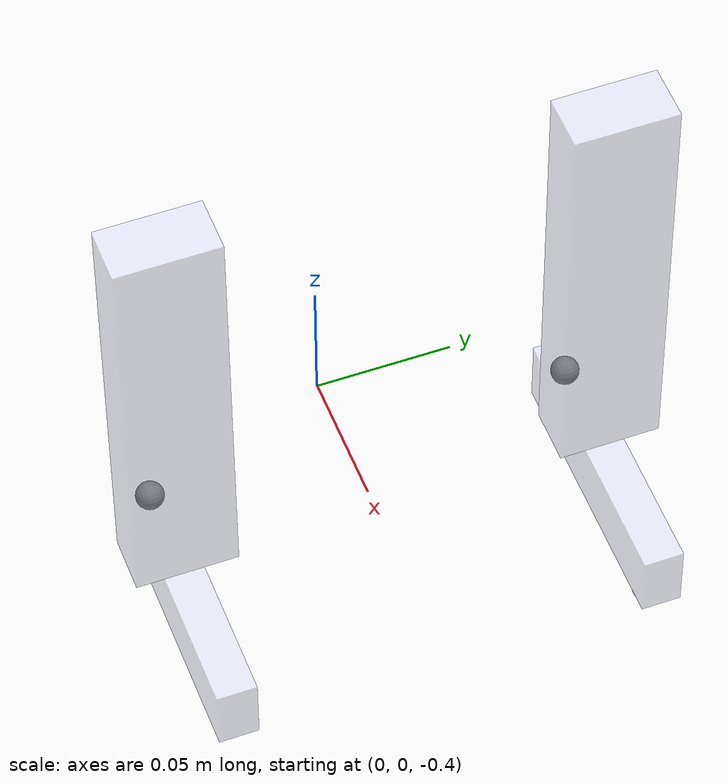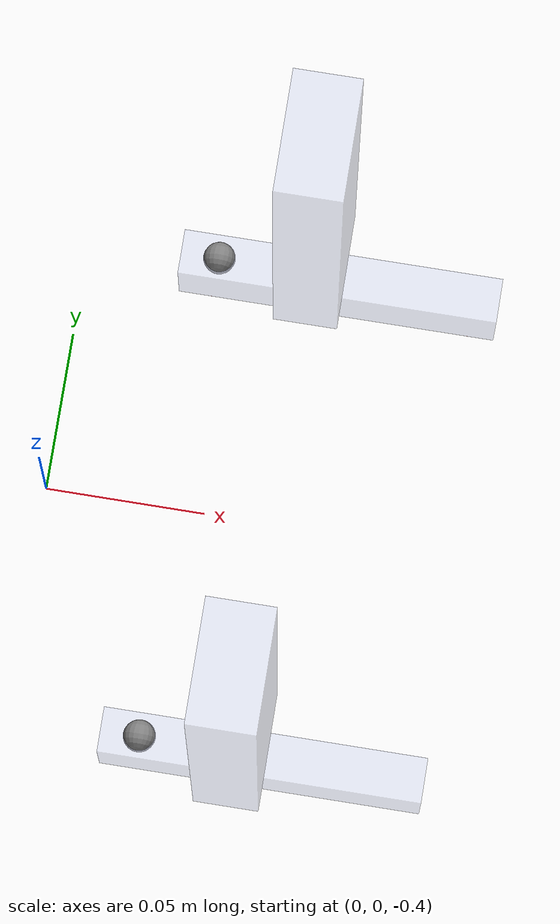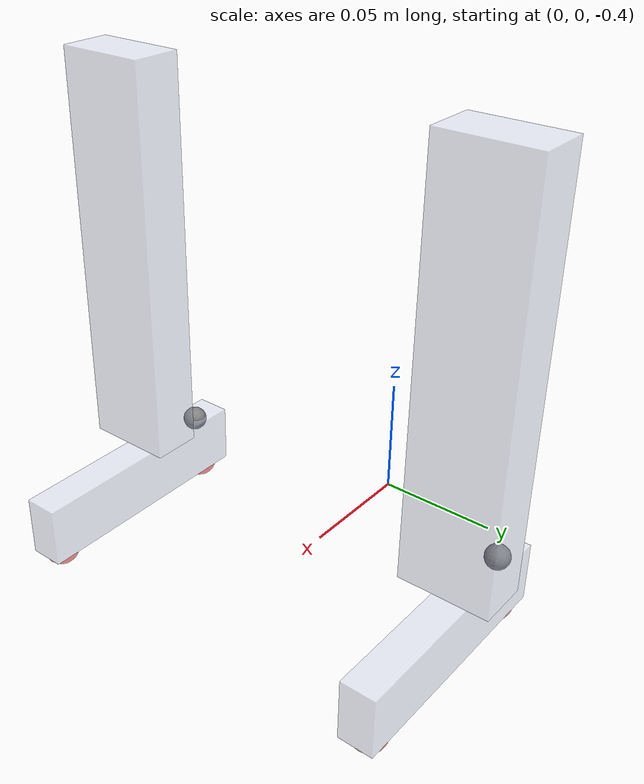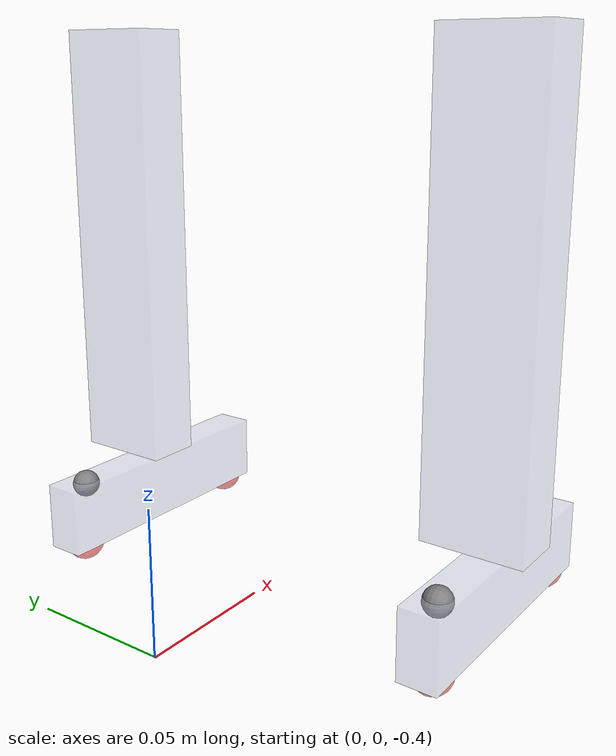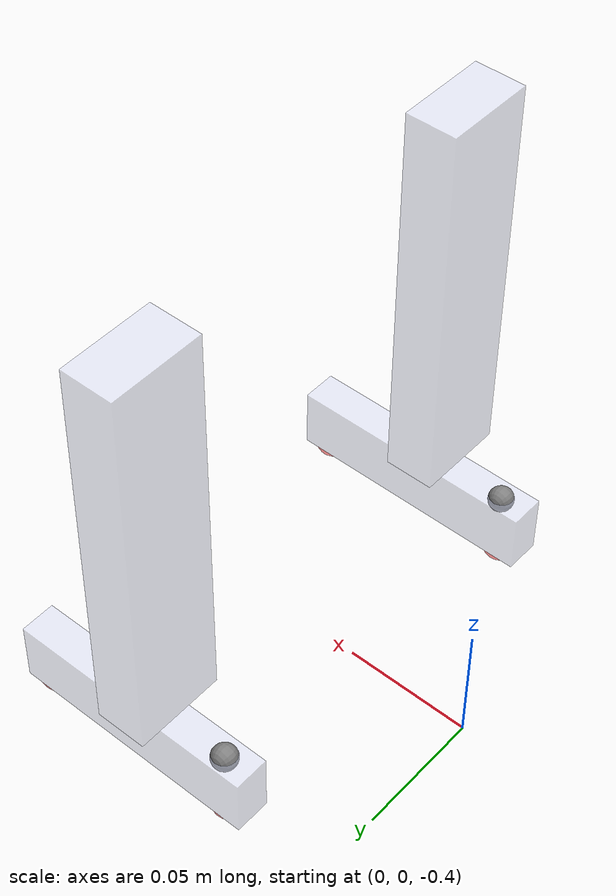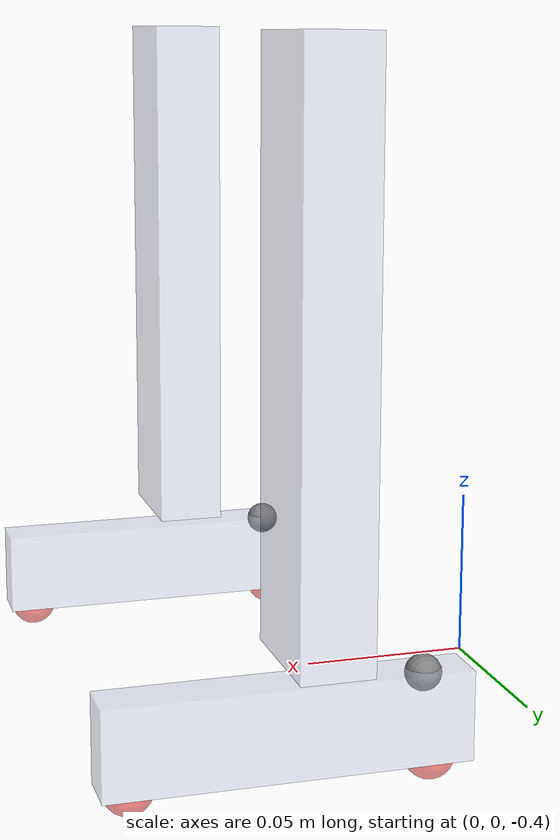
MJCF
<mujoco model="og_bruce scene">

  <include file="simplified_og_bruce.xml"/>

  <statistic center="0 0 1.0" extent="1.2"/>

  <asset>
    <texture type="skybox" builtin="gradient" rgb1="0.3 0.5 0.7" rgb2="0 0 0" width="512" height="3072"/>
    <texture type="2d" name="groundplane" builtin="checker" mark="edge" rgb1="0.2 0.3 0.4" rgb2="0.1 0.2 0.3"
      markrgb="0.8 0.8 0.8" width="300" height="300"/>
    <material name="groundplane" texture="groundplane" texuniform="true" texrepeat="5 5" reflectance="0.2"/>
  </asset>

  <worldbody>
    <geom name="floor" size="0 0 0.05" type="plane" contype="1" conaffinity="1" material="groundplane"/>
    <!-- Stationary camera wrt to world -->
  </worldbody>
</mujoco>

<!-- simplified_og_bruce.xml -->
<mujoco model="BRUCE_OG_SIMPLE_urdf">
    <compiler angle="radian" autolimits="true"/>

    <option impratio="5" iterations="3" ls_iterations="5" integrator="implicitfast" timestep="0.005">
            <flag gravity="enable"/>
    </option>

    <default>
        <default class="og_bruce">
            <geom contype="0" rgba="0.79216 0.81961 0.93333 0.1" conaffinity="0" group="2"/>
            <joint damping="1.0" armature="0.011"/>
            <position ctrlrange="-3.14 3.14" kp="1000" kv="5" />

            <default class="og_bruce/collision">
                <!-- Group right now is arbitrary -->
                <geom group="1" rgba="0.79216 0.81961 0.93333 0.4" solimp="0.015 1 0.031" friction="1.5 0.02 0.01"/>
                <!-- Foot collision geometry -->
                <default class="og_bruce/collision/foot" >
                    <geom contype="1" conaffinity="1" type="box" size="0.0125 0.05 0.007" pos="0.011 0.008 0"/>
                </default>
                <!-- Shin collision geometry -->
                <default class="og_bruce/collision/shin" >
                    <geom contype="2" conaffinity="2" type="box" size="0.08 0.01 0.018" pos="0.075 0.05 0.0"/>
                </default>

            </default>

            <default class="og_bruce/affine_bear">
              <position forcerange="-6.0 6.0"/>
            </default>

            <default class="og_bruce/affine_dynamixel">
              <position forcerange="-0.5 0.5" />
            </default>
        </default>
    </default>

    <worldbody>
        <!-- base link z at 0.5m to start in scene -->
        <body name="base_link" pos="0.0 0.0 0.0" quat="1.0 0.0 0.0 0.0" childclass="og_bruce">
            <!-- So the model isn't rigid in the air -->
            <freejoint />
            <!-- Camera wrt to COM to track the base link -->
            <camera name="track_com" pos="1.253 -1.502 0.378" xyaxes="0.768 0.641 0.000 -0.101 0.122 0.987" mode="trackcom"/>

            <inertial pos="0.02325 -0.00013 0.07844" mass="1.52819" diaginertia="0.010858132 0.00685942 0.005914725"/>

            <!-- Right Leg ############################################################################################### -->
            <body name="hip_yaw_r" pos="0.029801 -0.0758555 -0.0384375" quat="0.707107 0 0 -0.707107">
                <inertial pos="0.00014312 -0.00028909 0.0072751" quat="0.509356 0.490492 0.508928 0.490884"
                          mass="0.73183" diaginertia="0.0018184 0.0016741 0.000549369"/>
                <joint name="hip_yaw_r" pos="0 0 0" axis="0 0 1" range="-1.5708 1.5708"/>
                <body name="hip_pitch_r" quat="0.707107 0 0.707107 0">
                    <inertial pos="0 0 0" mass="0.01436" diaginertia="9.8342e-07 9.4912e-07 5.4852e-07"/>
                    <joint name="hip_pitch_r" pos="0 0 0" axis="0 0 1" range="-0.43633 2.4435"/>

                    <body name="hip_roll_r" quat="0.707107 -0.707107 0 0">
                        <inertial pos="0.12175 -0.00193 -0.01343" quat="0.475236 0.517443 0.542039 0.461083"
                                  mass="0.76925" diaginertia="0.00303236 0.00284069 0.000427703"/>
                        <joint name="hip_roll_r" pos="0 0 0" axis="0 0 1" range="-0.95993 0.95993"/>

                        <body name="knee_pitch_r" pos="0.174817 0 -0.0075" quat="0.707107 0.707107 0 0">
                            <inertial pos="0.049407 0.03979 0.00043596" quat="-0.0540474 0.685679 -0.166088 0.706639"
                                      mass="0.092271" diaginertia="0.000345577 0.000339699 4.45904e-05"/>
                            <joint name="knee_pitch_r" pos="0 0 0" axis="0 0 -1" range="0 2.4435"/>

                            <!-- Contact geometry for right shin -->
                            <body>
                                <geom class="og_bruce/collision/shin" name="shin_contact_r" />
                            </body>

                            <body name="ankle_pitch_r" pos="0.1618 0.0503411 0">
                                <inertial pos="0.014913 0.0053931 0.00011234"
                                          quat="0.468881 0.503427 -0.499007 0.526977" mass="0.025"
                                          diaginertia="2.1159e-05 2.02708e-05 1.57584e-06"/>
                                <joint name="ankle_pitch_r" pos="0 0 0" axis="0 0 -1" range="-1.2566 1.0472"/>
                                <site name="ankle_attachment_r" pos="0 -0.03 0"/>

                                <!-- Contact geometry for right foot -->
                                <body>
                                    <geom class="og_bruce/collision/foot" name="foot_contact_r" />
                                </body>
                                <!-- Sites for right foot contact sensors -->
                                <site name="footR_contact_site_front" pos="0.023 0.05 0" size="0.007" rgba="1 0 0 0.5"/>
                                <site name="footR_contact_site_back" pos="0.023 -0.032 0" size="0.007" rgba="1 0 0 0.5"/>

                            </body>
                        </body>
                        <body name="knee_pitch_r0" pos="0.174817 0 -0.0075" quat="0.707107 0.707107 0 0">
                            <inertial pos="0.0 0.0 0.0" mass="0.0001"
                                      diaginertia="4.04275e-08 3.80418e-08 7.70463e-08"/>
                            <joint name="knee_pitch_r0" pos="0 0 0" axis="0 0 1"/>
                            <body name="ankle_pitch_r1" pos="0 -0.03  0" quat="0.9886517   0  0 0.1502256">
                                <joint name="ankle_pitch_r10" pos="0 0 0" axis="0 0 1"/>
                                <inertial pos="0.0 0.0 0.0" mass="0.0001"
                                          diaginertia="4.04275e-08 3.80418e-08 7.70463e-08"/>
                                <body name="knee_pitch_r1" pos="0.1695 0 0">
                                    <joint name="knee_pitch_r1" axis="0 0 1"/>
                                    <inertial pos="0.0 0.0 0.0" mass="0.0001"
                                              diaginertia="4.04275e-08 3.80418e-08 7.70463e-08"/>
                                </body>
                            </body>
                        </body>
                    </body>
                </body>

                <body name="hip_actuatorR_l" quat="0.707107 0 0.707107 0">
                    <inertial pos="0 0 0" mass="0.001" diaginertia="1e-9 1e-9 1e-9"/>
                    <joint name="hip_actuatorR_l" pos="0 0 0" axis="0 0 1"/>
                </body>
                <body name="hip_actuatorR_r" quat="0.707107 0 0.707107 0">
                    <inertial pos="0 0 0" mass="0.001" diaginertia="1e-9 1e-9 1e-9"/>
                    <joint name="hip_actuatorR_r" pos="0 0 0" axis="0 0 -1"/>
                </body>
            </body>

            <!-- Left Leg ############################################################################################### -->
            <body name="hip_yaw_l" pos="0.029801 0.0758555 -0.0384375" quat="0.707107 0 0 -0.707107">
                <inertial pos="0.00014 -0.00029 0.00728" quat="0.509356 0.490492 0.508928 0.490884" mass="0.73183"
                          diaginertia="0.0018184 0.0016741 0.000549369"/>
                <joint name="hip_yaw_l" pos="0 0 0" axis="0 0 1" range="-1.5708 1.5708"/>

                <body name="hip_pitch_l" quat="0.707107 0 0.707107 0">
                    <inertial pos="0 0 0" mass="0.01436" diaginertia="9.8342e-07 9.4912e-07 5.4852e-07"/>
                    <joint name="hip_pitch_l" pos="0 0 0" axis="0 0 1" range="-0.43633 2.4435"/>

                    <body name="hip_roll_l" quat="0.707107 -0.707107 0 0">
                        <inertial pos="0.12174 0.0018 -0.01344" quat="0.458106 0.54719 0.511961 0.47814" mass="0.76925"
                                  diaginertia="0.00303267 0.00284036 0.00042805"/>
                        <joint name="hip_roll_l" pos="0 0 0" axis="0 0 1" range="-0.95993 0.95993"/>

                        <body name="knee_pitch_l" pos="0.174817 0 -0.0075" quat="0.707107 0.707107 0 0">
                            <inertial pos="0.049014 0.039754 -0.00044194" quat="0.165544 0.706684 0.0527763 0.685862"
                                      mass="0.091949" diaginertia="0.000341457 0.000335584 4.45378e-05"/>
                            <joint name="knee_pitch_l" pos="0 0 0" axis="0 0 -1" range="0 2.4435"/>

                            <!-- Contact geometry for left shin -->
                            <body>
                                <geom class="og_bruce/collision/shin" name="shin_contact_l" />
                            </body>

                            <body name="ankle_pitch_l" pos="0.1618 0.0503411 0">
                                <inertial pos="0.01509 0.0056392 -0.00011925"
                                          quat="0.500518 0.525947 -0.470146 0.501821" mass="0.025"
                                          diaginertia="2.1386e-05 2.05126e-05 1.53437e-06"/>
                                <joint name="ankle_pitch_l" pos="0 0 0" axis="0 0 -1" range="-1.2566 1.0472"/>
                                <site name="ankle_attachment_l" pos="0 -0.03 0"/>

                                <!-- Contact geometry for left foot -->
                                <body>
                                    <geom class="og_bruce/collision/foot" name="foot_contact_l" />
                                </body>
                                <!-- Sites for left foot contact sensors -->
                                <site name="footL_contact_site_front" pos="0.023 0.05 0" size="0.007" rgba="1 0 0 0.5"/>
                                <site name="footL_contact_site_back" pos="0.023 -0.032 0" size="0.007" rgba="1 0 0 0.5"/>

                            </body>
                        </body>
                        <body name="knee_pitch_l0" pos="0.174817 0 -0.0075" quat="0.707107 0.707107 0 0">
                            <inertial pos="0.0 0.0 0.0" mass="0.0001"
                                      diaginertia="4.04275e-08 3.80418e-08 7.70463e-08"/>
                            <joint name="knee_pitch_l0" pos="0 0 0" axis="0 0 1"/>

                            <body name="ankle_pitch_l1" pos="0 -0.03  0" quat="0.9886517 0  0 0.1502256">
                                <joint name="ankle_pitch_l1" pos="0 0 0" axis="0 0 1"/>
                                <inertial pos="0.0 0.0 0.0" mass="0.0001"
                                          diaginertia="4.04275e-08 3.80418e-08 7.70463e-08"/>
                                <body name="knee_pitch_l1" pos="0.1695 0  0">
                                    <joint name="knee_pitch_l1" axis="0 0 1"/>
                                    <inertial pos="0.0 0.0 0.0" mass="0.0001"
                                              diaginertia="4.04275e-08 3.80418e-08 7.70463e-08"/>
                                </body>
                            </body>
                        </body>
                    </body>
                </body>

                <body name="hip_actuatorL_l" quat="0.707107 0 0.707107 0">
                    <inertial pos="0 0 0" mass="0.001" diaginertia="1e-9 1e-9 1e-9"/>
                    <joint name="hip_actuatorL_l" pos="0 0 0" axis="0 0 1"/>
                </body>

                <body name="hip_actuatorL_r" quat="0.707107 0 0.707107 0">
                    <inertial pos="0 0 0" mass="0.001" diaginertia="1e-9 1e-9 1e-9"/>
                    <joint name="hip_actuatorL_r" pos="0 0 0" axis="0 0 -1"/>
                </body>

            </body>

            <!-- Upper Body -->
            <body name="shoulder_pitch_r" pos="0.029801 -0.13225 0.151062" quat="0.5 0.5 -0.5 0.5">
                <inertial pos="0 -0.0004 -0.01353" quat="0.999973 -0.00739362 -1.23246e-06 4.94233e-06" mass="0.08908"
                          diaginertia="1.6397e-05 1.54135e-05 8.45928e-06"/>
                <joint name="shoulder_pitch_r" pos="0 0 0" axis="0 0 -1" range="-3.1416 3.1416"/>
                <body name="shoulder_roll_r" quat="0.5 0.5 -0.5 0.5">
                    <inertial pos="0.05766 -0.00412 0.00077" quat="0.540311 0.434098 0.57106 0.439902" mass="0.03581"
                              diaginertia="6.66828e-05 6.63384e-05 1.03399e-05"/>
                    <joint name="shoulder_roll_r" pos="0 0 0" axis="0 0 1" range="-1.4835 1.8326"/>
                    <body name="elbow_pitch_r" pos="0.1145 -0.005 0.005" quat="0.707107 0.707107 0 0">
                        <inertial pos="0.01939 0 0.00038" quat="0.50135 0.498646 0.498646 0.50135" mass="0.09342"
                                  diaginertia="6.6448e-05 6.49187e-05 7.73303e-06"/>
                        <joint name="elbow_pitch_r" pos="0 0 0" axis="0 0 -1" range="-2.0595 1.5708"/>
                    </body>
                </body>
            </body>
            <body name="shoulder_pitch_l" pos="0.029801 0.13225 0.151062" quat="0.5 -0.5 0.5 0.5">
                <inertial pos="0 -0.0004 -0.01353" quat="0.999973 -0.00739362 -1.23246e-06 4.94233e-06" mass="0.08908"
                          diaginertia="1.6397e-05 1.54135e-05 8.45928e-06"/>
                <joint name="shoulder_pitch_l" pos="0 0 0" axis="0 0 -1" range="-3.1416 3.1416"/>
                <body name="shoulder_roll_l" quat="0.499998 0.5 -0.5 0.500002">
                    <inertial pos="0.05766 0.00411 0.00077" quat="0.439864 0.571051 0.43411 0.540341" mass="0.03581"
                              diaginertia="6.66824e-05 6.63384e-05 1.03402e-05"/>
                    <joint name="shoulder_roll_l" pos="0 0 0" axis="0 0 1" range="-1.8326 1.4835"/>
                    <body name="elbow_pitch_l" pos="0.1145 0.005 0.005" quat="0.707107 -0.707107 0 0">
                        <inertial pos="0.01939 0 0.00038" quat="0.50135 0.498646 0.498646 0.50135" mass="0.09342"
                                  diaginertia="6.6448e-05 6.49187e-05 7.73303e-06"/>
                        <joint name="elbow_pitch_l" pos="0 0 0" axis="0 0 -1" range="-1.5708 2.0595"/>
                    </body>
                </body>
            </body>
        </body>
    </worldbody>

    <!-- Actuators for lower body joints using the leg actuator parameters -->
    <actuator>
        <!-- Right leg actuators with control ranges -->
        <position class="og_bruce/affine_bear" joint="hip_yaw_r" name="hip_yaw_r"/>
        <position class="og_bruce/affine_bear" joint="hip_actuatorR_r" name="hip_actuatorR_r"/>
        <position class="og_bruce/affine_bear" joint="hip_actuatorR_l" name="hip_actuatorR_l"/>
        <position class="og_bruce/affine_bear" joint="knee_pitch_r" name="knee_pitch_r"/>
        <position class="og_bruce/affine_bear" joint="knee_pitch_r0" name="ankle_pitch_r"/>

        <!-- Left leg actuators with control ranges -->
        <position class="og_bruce/affine_bear" joint="hip_yaw_l" name="hip_yaw_l"/>
        <position class="og_bruce/affine_bear" joint="hip_actuatorL_r" name="hip_actuatorL_r"/>
        <position class="og_bruce/affine_bear" joint="hip_actuatorL_l" name="hip_actuatorL_l"/>
        <position class="og_bruce/affine_bear" joint="knee_pitch_l" name="knee_pitch_l"/>
        <position class="og_bruce/affine_bear" joint="knee_pitch_l0" name="ankle_pitch_l"/>
    </actuator>

    <!-- Actuators for upper body joints using the arm actuator parameters -->
    <actuator>
        <!-- Right arm actuators -->
        <position class="og_bruce/affine_dynamixel" joint="shoulder_pitch_r" name="shoulder_pitch_r"/>
        <position class="og_bruce/affine_dynamixel" joint="shoulder_roll_r" name="shoulder_roll_r"/>
        <position class="og_bruce/affine_dynamixel" joint="elbow_pitch_r" name="elbow_pitch_r"/>

        <!-- Left arm actuators -->
        <position class="og_bruce/affine_dynamixel" joint="shoulder_pitch_l" name="shoulder_pitch_l"/>
        <position class="og_bruce/affine_dynamixel" joint="shoulder_roll_l" name="shoulder_roll_l"/>
        <position class="og_bruce/affine_dynamixel" joint="elbow_pitch_l" name="elbow_pitch_l"/>
    </actuator>

    <tendon>
        <!-- Parallel mechanism for right leg -->
        <fixed name="roll_r">
            <joint joint="hip_roll_r" coef="1"/>
        </fixed>
        <fixed name="pitch_r">
            <joint joint="hip_pitch_r" coef="1"/>
        </fixed>
        <fixed name="sum_r">
            <joint joint="hip_actuatorR_r" coef="0.5"/>
            <joint joint="hip_actuatorR_l" coef="0.5"/>
        </fixed>
        <fixed name="diff_r">
            <joint joint="hip_actuatorR_r" coef=".5"/>
            <joint joint="hip_actuatorR_l" coef="-.5"/>
        </fixed>

        <!-- Parallel mechanism for left leg -->
        <fixed name="roll_l">
            <joint joint="hip_roll_l" coef="1"/>
        </fixed>
        <fixed name="pitch_l">
            <joint joint="hip_pitch_l" coef="1"/>
        </fixed>
        <fixed name="sum_l">
            <joint joint="hip_actuatorL_r" coef="0.5"/>
            <joint joint="hip_actuatorL_l" coef="0.5"/>
        </fixed>
        <fixed name="diff_l">
            <joint joint="hip_actuatorL_r" coef=".5"/>
            <joint joint="hip_actuatorL_l" coef="-.5"/>
        </fixed>
    </tendon>

    <equality>
        <!-- For right differential mechanism -->
        <tendon tendon1="roll_r" tendon2="sum_r" polycoef="0 -1 0 0 0"/>
        <tendon tendon1="pitch_r" tendon2="diff_r" polycoef="0 -1 0 0 0"/>
        <!-- For left differential mechanism -->
        <tendon tendon1="roll_l" tendon2="sum_l" polycoef="0 -1 0 0 0"/>
        <tendon tendon1="pitch_l" tendon2="diff_l" polycoef="0 -1 0 0 0"/>
        <!-- For 5-bar linkage mechanisms -->
        <!-- Connecting body will assume the link is closed when loaded. Constraints can break with infeasible joints. -->
        <!-- Connecting sites will enforce two points to be connected, but the simulation becomes unstable when infeasible -->
        <connect anchor="0 0 0" solref="0.005 1" body1="knee_pitch_r1" body2="ankle_pitch_r" name="equality_knee_r"/>
        <connect anchor="0 0 0" solref="0.005 1" body1="knee_pitch_l1" body2="ankle_pitch_l" name="equality_knee_l"/>
    </equality>

    <contact>
        <!-- Collision between right shin and left shin -->
        <pair geom1="shin_contact_r" geom2="shin_contact_l"/>
        <!-- Collision between right shin and left foot -->
        <pair geom1="shin_contact_r" geom2="foot_contact_l"/>
        <!-- Collision between right foot and left shin -->
        <pair geom1="foot_contact_r" geom2="shin_contact_l"/>
        <!-- Collision between right foot and left foot -->
        <pair geom1="foot_contact_r" geom2="foot_contact_l"/>
    </contact>

    <keyframe>
        <key name="home"
            qpos='  0 0 0.45
                    1 0 0 0
                    0 0 0 0 0 0 0 0 0 0
                    0 0 0 0 0 0 0 0 0 0
                    0 1.4 0 0 -1.4 0'

            ctrl='0 0 0 0.45 0 0 0 0 0.45 0
                  0 1.4 0 0 -1.4 0'/>
    </keyframe>
 </mujoco>
